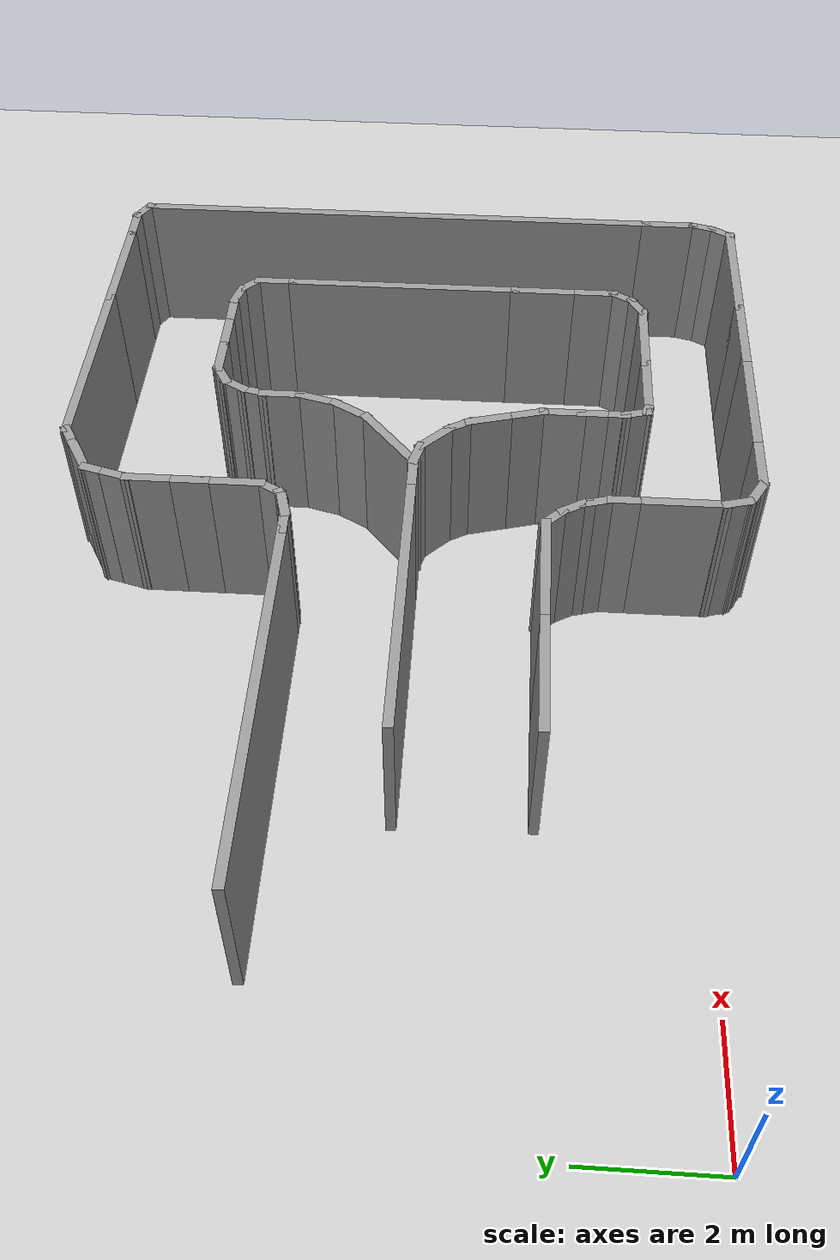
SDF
<sdf version="1.7">
 <world name="default">
  <model name="ground_plane">
   <static>1</static>
   <link name="link">
    <collision name="collision">
     <geometry><plane><normal>0 0 1</normal><size>100 100</size></plane></geometry>
     <surface><friction><ode><mu>100</mu><mu2>50</mu2></ode></friction></surface>
    </collision>
    <visual name="visual">
     <cast_shadows>0</cast_shadows>
     <geometry><plane><normal>0 0 1</normal><size>100 100</size></plane></geometry>
     <material>
      <script><uri>file://media/materials/scripts/gazebo.material</uri><name>Gazebo/Grey</name></script>
     </material>
    </visual>
   </link>
  </model>
  <model name="f1track">
   <pose>5.08169 4.60553 0 0 -0 0</pose>
   <link name="Wall_100">
    <collision name="Wall_100_Collision">
     <geometry><box><size>0.75 0.15 2.5</size></box></geometry>
     <pose>0 0 1.25 0 -0 0</pose>
    </collision>
    <visual name="Wall_100_Visual">
     <pose>0 0 1.25 0 -0 0</pose>
     <geometry><box><size>0.75 0.15 2.5</size></box></geometry>
     <material>
      <script><uri>file://media/materials/scripts/gazebo.material</uri><name>Gazebo/Grey</name></script>
      <ambient>1 1 1 1</ambient>
     </material>
     <meta><layer>0</layer></meta>
    </visual>
    <pose>5.52536 -1.1961 0 0 -0 -1.309</pose>
   </link>
   <link name="Wall_101">
    <collision name="Wall_101_Collision">
     <geometry><box><size>0.75 0.15 2.5</size></box></geometry>
     <pose>0 0 1.25 0 -0 0</pose>
    </collision>
    <visual name="Wall_101_Visual">
     <pose>0 0 1.25 0 -0 0</pose>
     <geometry><box><size>0.75 0.15 2.5</size></box></geometry>
     <material>
      <script><uri>file://media/materials/scripts/gazebo.material</uri><name>Gazebo/Grey</name></script>
      <ambient>1 1 1 1</ambient>
     </material>
     <meta><layer>0</layer></meta>
    </visual>
    <pose>5.68066 -1.77566 0 0 -0 -1.309</pose>
   </link>
   <link name="Wall_102">
    <collision name="Wall_102_Collision">
     <geometry><box><size>0.75 0.15 2.5</size></box></geometry>
     <pose>0 0 1.25 0 -0 0</pose>
    </collision>
    <visual name="Wall_102_Visual">
     <pose>0 0 1.25 0 -0 0</pose>
     <geometry><box><size>0.75 0.15 2.5</size></box></geometry>
     <material>
      <script><uri>file://media/materials/scripts/gazebo.material</uri><name>Gazebo/Grey</name></script>
      <ambient>1 1 1 1</ambient>
     </material>
     <meta><layer>0</layer></meta>
    </visual>
    <pose>5.7583 -2.36544 0 0 -0 -1.5708</pose>
   </link>
   <link name="Wall_103">
    <collision name="Wall_103_Collision">
     <geometry><box><size>0.5 0.15 2.5</size></box></geometry>
     <pose>0 0 1.25 0 -0 0</pose>
    </collision>
    <visual name="Wall_103_Visual">
     <pose>0 0 1.25 0 -0 0</pose>
     <geometry><box><size>0.5 0.15 2.5</size></box></geometry>
     <material>
      <script><uri>file://media/materials/scripts/gazebo.material</uri><name>Gazebo/Grey</name></script>
      <ambient>1 1 1 1</ambient>
     </material>
     <meta><layer>0</layer></meta>
    </visual>
    <pose>5.7583 -2.84044 0 0 -0 -1.5708</pose>
   </link>
   <link name="Wall_104">
    <collision name="Wall_104_Collision">
     <geometry><box><size>0.5 0.15 2.5</size></box></geometry>
     <pose>0 0 1.25 0 -0 0</pose>
    </collision>
    <visual name="Wall_104_Visual">
     <pose>0 0 1.25 0 -0 0</pose>
     <geometry><box><size>0.5 0.15 2.5</size></box></geometry>
     <material>
      <script><uri>file://media/materials/scripts/gazebo.material</uri><name>Gazebo/Grey</name></script>
      <ambient>1 1 1 1</ambient>
     </material>
     <meta><layer>0</layer></meta>
    </visual>
    <pose>5.7583 -3.19044 0 0 -0 -1.5708</pose>
   </link>
   <link name="Wall_105">
    <collision name="Wall_105_Collision">
     <geometry><box><size>0.5 0.15 2.5</size></box></geometry>
     <pose>0 0 1.25 0 -0 0</pose>
    </collision>
    <visual name="Wall_105_Visual">
     <pose>0 0 1.25 0 -0 0</pose>
     <geometry><box><size>0.5 0.15 2.5</size></box></geometry>
     <material>
      <script><uri>file://media/materials/scripts/gazebo.material</uri><name>Gazebo/Grey</name></script>
      <ambient>1 1 1 1</ambient>
     </material>
     <meta><layer>0</layer></meta>
    </visual>
    <pose>5.8036 -3.53448 0 0 -0 -1.309</pose>
   </link>
   <link name="Wall_106">
    <collision name="Wall_106_Collision">
     <geometry><box><size>0.25 0.15 2.5</size></box></geometry>
     <pose>0 0 1.25 0 -0 0</pose>
    </collision>
    <visual name="Wall_106_Visual">
     <pose>0 0 1.25 0 -0 0</pose>
     <geometry><box><size>0.25 0.15 2.5</size></box></geometry>
     <material>
      <script><uri>file://media/materials/scripts/gazebo.material</uri><name>Gazebo/Grey</name></script>
      <ambient>1 1 1 1</ambient>
     </material>
     <meta><layer>0</layer></meta>
    </visual>
    <pose>5.89718 -3.71645 0 0 -0 -0.261799</pose>
   </link>
   <link name="Wall_107">
    <collision name="Wall_107_Collision">
     <geometry><box><size>1.25 0.15 2.5</size></box></geometry>
     <pose>0 0 1.25 0 -0 0</pose>
    </collision>
    <visual name="Wall_107_Visual">
     <pose>0 0 1.25 0 -0 0</pose>
     <geometry><box><size>1.25 0.15 2.5</size></box></geometry>
     <material>
      <script><uri>file://media/materials/scripts/gazebo.material</uri><name>Gazebo/Grey</name></script>
      <ambient>1 1 1 1</ambient>
     </material>
     <meta><layer>0</layer></meta>
    </visual>
    <pose>6.49548 -3.72939 0 0 -0 0</pose>
   </link>
   <link name="Wall_108">
    <collision name="Wall_108_Collision">
     <geometry><box><size>1.5 0.15 2.5</size></box></geometry>
     <pose>0 0 1.25 0 -0 0</pose>
    </collision>
    <visual name="Wall_108_Visual">
     <pose>0 0 1.25 0 -0 0</pose>
     <geometry><box><size>1.5 0.15 2.5</size></box></geometry>
     <material>
      <script><uri>file://media/materials/scripts/gazebo.material</uri><name>Gazebo/Grey</name></script>
      <ambient>1 1 1 1</ambient>
     </material>
     <meta><layer>0</layer></meta>
    </visual>
    <pose>7.72048 -3.72939 0 0 -0 0</pose>
   </link>
   <link name="Wall_109">
    <collision name="Wall_109_Collision">
     <geometry><box><size>0.5 0.15 2.5</size></box></geometry>
     <pose>0 0 1.25 0 -0 0</pose>
    </collision>
    <visual name="Wall_109_Visual">
     <pose>0 0 1.25 0 -0 0</pose>
     <geometry><box><size>0.5 0.15 2.5</size></box></geometry>
     <material>
      <script><uri>file://media/materials/scripts/gazebo.material</uri><name>Gazebo/Grey</name></script>
      <ambient>1 1 1 1</ambient>
     </material>
     <meta><layer>0</layer></meta>
    </visual>
    <pose>8.54703 -3.64189 0 0 -0 0.523599</pose>
   </link>
   <link name="Wall_110">
    <collision name="Wall_110_Collision">
     <geometry><box><size>0.5 0.15 2.5</size></box></geometry>
     <pose>0 0 1.25 0 -0 0</pose>
    </collision>
    <visual name="Wall_110_Visual">
     <pose>0 0 1.25 0 -0 0</pose>
     <geometry><box><size>0.5 0.15 2.5</size></box></geometry>
     <material>
      <script><uri>file://media/materials/scripts/gazebo.material</uri><name>Gazebo/Grey</name></script>
      <ambient>1 1 1 1</ambient>
     </material>
     <meta><layer>0</layer></meta>
    </visual>
    <pose>8.78609 -3.40284 0 0 -0 1.0472</pose>
   </link>
   <link name="Wall_111">
    <collision name="Wall_111_Collision">
     <geometry><box><size>0.75 0.15 2.5</size></box></geometry>
     <pose>0 0 1.25 0 -0 0</pose>
    </collision>
    <visual name="Wall_111_Visual">
     <pose>0 0 1.25 0 -0 0</pose>
     <geometry><box><size>0.75 0.15 2.5</size></box></geometry>
     <material>
      <script><uri>file://media/materials/scripts/gazebo.material</uri><name>Gazebo/Grey</name></script>
      <ambient>1 1 1 1</ambient>
     </material>
     <meta><layer>0</layer></meta>
    </visual>
    <pose>8.87359 -2.95128 0 0 -0 1.5708</pose>
   </link>
   <link name="Wall_112">
    <collision name="Wall_112_Collision">
     <geometry><box><size>1.25 0.15 2.5</size></box></geometry>
     <pose>0 0 1.25 0 -0 0</pose>
    </collision>
    <visual name="Wall_112_Visual">
     <pose>0 0 1.25 0 -0 0</pose>
     <geometry><box><size>1.25 0.15 2.5</size></box></geometry>
     <material>
      <script><uri>file://media/materials/scripts/gazebo.material</uri><name>Gazebo/Grey</name></script>
      <ambient>1 1 1 1</ambient>
     </material>
     <meta><layer>0</layer></meta>
    </visual>
    <pose>8.87359 -2.10128 0 0 -0 1.5708</pose>
   </link>
   <link name="Wall_113">
    <collision name="Wall_113_Collision">
     <geometry><box><size>4 0.15 2.5</size></box></geometry>
     <pose>0 0 1.25 0 -0 0</pose>
    </collision>
    <visual name="Wall_113_Visual">
     <pose>0 0 1.25 0 -0 0</pose>
     <geometry><box><size>4 0.15 2.5</size></box></geometry>
     <material>
      <script><uri>file://media/materials/scripts/gazebo.material</uri><name>Gazebo/Grey</name></script>
      <ambient>1 1 1 1</ambient>
     </material>
     <meta><layer>0</layer></meta>
    </visual>
    <pose>8.87359 0.373715 0 0 -0 1.5708</pose>
   </link>
   <link name="Wall_114">
    <collision name="Wall_114_Collision">
     <geometry><box><size>0.75 0.15 2.5</size></box></geometry>
     <pose>0 0 1.25 0 -0 0</pose>
    </collision>
    <visual name="Wall_114_Visual">
     <pose>0 0 1.25 0 -0 0</pose>
     <geometry><box><size>0.75 0.15 2.5</size></box></geometry>
     <material>
      <script><uri>file://media/materials/scripts/gazebo.material</uri><name>Gazebo/Grey</name></script>
      <ambient>1 1 1 1</ambient>
     </material>
     <meta><layer>0</layer></meta>
    </visual>
    <pose>8.87359 2.59871 0 0 -0 1.5708</pose>
   </link>
   <link name="Wall_115">
    <collision name="Wall_115_Collision">
     <geometry><box><size>0.5 0.15 2.5</size></box></geometry>
     <pose>0 0 1.25 0 -0 0</pose>
    </collision>
    <visual name="Wall_115_Visual">
     <pose>0 0 1.25 0 -0 0</pose>
     <geometry><box><size>0.5 0.15 2.5</size></box></geometry>
     <material>
      <script><uri>file://media/materials/scripts/gazebo.material</uri><name>Gazebo/Grey</name></script>
      <ambient>1 1 1 1</ambient>
     </material>
     <meta><layer>0</layer></meta>
    </visual>
    <pose>8.74985 3.02246 0 0 -0 2.35619</pose>
   </link>
   <link name="Wall_116">
    <collision name="Wall_116_Collision">
     <geometry><box><size>0.5 0.15 2.5</size></box></geometry>
     <pose>0 0 1.25 0 -0 0</pose>
    </collision>
    <visual name="Wall_116_Visual">
     <pose>0 0 1.25 0 -0 0</pose>
     <geometry><box><size>0.5 0.15 2.5</size></box></geometry>
     <material>
      <script><uri>file://media/materials/scripts/gazebo.material</uri><name>Gazebo/Grey</name></script>
      <ambient>1 1 1 1</ambient>
     </material>
     <meta><layer>0</layer></meta>
    </visual>
    <pose>8.45707 3.1915 0 0 -0 2.87979</pose>
   </link>
   <link name="Wall_117">
    <collision name="Wall_117_Collision">
     <geometry><box><size>0.75 0.15 2.5</size></box></geometry>
     <pose>0 0 1.25 0 -0 0</pose>
    </collision>
    <visual name="Wall_117_Visual">
     <pose>0 0 1.25 0 -0 0</pose>
     <geometry><box><size>0.75 0.15 2.5</size></box></geometry>
     <material>
      <script><uri>file://media/materials/scripts/gazebo.material</uri><name>Gazebo/Grey</name></script>
      <ambient>1 1 1 1</ambient>
     </material>
     <meta><layer>0</layer></meta>
    </visual>
    <pose>7.98803 3.23679 0 0 -0 3.14159</pose>
   </link>
   <link name="Wall_118">
    <collision name="Wall_118_Collision">
     <geometry><box><size>0.75 0.15 2.5</size></box></geometry>
     <pose>0 0 1.25 0 -0 0</pose>
    </collision>
    <visual name="Wall_118_Visual">
     <pose>0 0 1.25 0 -0 0</pose>
     <geometry><box><size>0.75 0.15 2.5</size></box></geometry>
     <material>
      <script><uri>file://media/materials/scripts/gazebo.material</uri><name>Gazebo/Grey</name></script>
      <ambient>1 1 1 1</ambient>
     </material>
     <meta><layer>0</layer></meta>
    </visual>
    <pose>7.38803 3.23679 0 0 -0 3.14159</pose>
   </link>
   <link name="Wall_121">
    <collision name="Wall_121_Collision">
     <geometry><box><size>0.75 0.15 2.5</size></box></geometry>
     <pose>0 0 1.25 0 -0 0</pose>
    </collision>
    <visual name="Wall_121_Visual">
     <pose>0 0 1.25 0 -0 0</pose>
     <geometry><box><size>0.75 0.15 2.5</size></box></geometry>
     <material>
      <script><uri>file://media/materials/scripts/gazebo.material</uri><name>Gazebo/Grey</name></script>
      <ambient>1 1 1 1</ambient>
     </material>
     <meta><layer>0</layer></meta>
    </visual>
    <pose>6.78803 3.23679 0 0 -0 3.14159</pose>
   </link>
   <link name="Wall_122">
    <collision name="Wall_122_Collision">
     <geometry><box><size>0.5 0.15 2.5</size></box></geometry>
     <pose>0 0 1.25 0 -0 0</pose>
    </collision>
    <visual name="Wall_122_Visual">
     <pose>0 0 1.25 0 -0 0</pose>
     <geometry><box><size>0.5 0.15 2.5</size></box></geometry>
     <material>
      <script><uri>file://media/materials/scripts/gazebo.material</uri><name>Gazebo/Grey</name></script>
      <ambient>1 1 1 1</ambient>
     </material>
     <meta><layer>0</layer></meta>
    </visual>
    <pose>6.33647 3.14929 0 0 -0 -2.61799</pose>
   </link>
   <link name="Wall_123">
    <collision name="Wall_123_Collision">
     <geometry><box><size>0.5 0.15 2.5</size></box></geometry>
     <pose>0 0 1.25 0 -0 0</pose>
    </collision>
    <visual name="Wall_123_Visual">
     <pose>0 0 1.25 0 -0 0</pose>
     <geometry><box><size>0.5 0.15 2.5</size></box></geometry>
     <material>
      <script><uri>file://media/materials/scripts/gazebo.material</uri><name>Gazebo/Grey</name></script>
      <ambient>1 1 1 1</ambient>
     </material>
     <meta><layer>0</layer></meta>
    </visual>
    <pose>6.09742 2.91024 0 0 -0 -2.0944</pose>
   </link>
   <link name="Wall_124">
    <collision name="Wall_124_Collision">
     <geometry><box><size>0.5 0.15 2.5</size></box></geometry>
     <pose>0 0 1.25 0 -0 0</pose>
    </collision>
    <visual name="Wall_124_Visual">
     <pose>0 0 1.25 0 -0 0</pose>
     <geometry><box><size>0.5 0.15 2.5</size></box></geometry>
     <material>
      <script><uri>file://media/materials/scripts/gazebo.material</uri><name>Gazebo/Grey</name></script>
      <ambient>1 1 1 1</ambient>
     </material>
     <meta><layer>0</layer></meta>
    </visual>
    <pose>5.96463 2.58964 0 0 -0 -1.8326</pose>
   </link>
   <link name="Wall_125">
    <collision name="Wall_125_Collision">
     <geometry><box><size>0.75 0.15 2.5</size></box></geometry>
     <pose>0 0 1.25 0 -0 0</pose>
    </collision>
    <visual name="Wall_125_Visual">
     <pose>0 0 1.25 0 -0 0</pose>
     <geometry><box><size>0.75 0.15 2.5</size></box></geometry>
     <material>
      <script><uri>file://media/materials/scripts/gazebo.material</uri><name>Gazebo/Grey</name></script>
      <ambient>1 1 1 1</ambient>
     </material>
     <meta><layer>0</layer></meta>
    </visual>
    <pose>5.91933 2.12061 0 0 -0 -1.5708</pose>
   </link>
   <link name="Wall_126">
    <collision name="Wall_126_Collision">
     <geometry><box><size>0.75 0.15 2.5</size></box></geometry>
     <pose>0 0 1.25 0 -0 0</pose>
    </collision>
    <visual name="Wall_126_Visual">
     <pose>0 0 1.25 0 -0 0</pose>
     <geometry><box><size>0.75 0.15 2.5</size></box></geometry>
     <material>
      <script><uri>file://media/materials/scripts/gazebo.material</uri><name>Gazebo/Grey</name></script>
      <ambient>1 1 1 1</ambient>
     </material>
     <meta><layer>0</layer></meta>
    </visual>
    <pose>5.84169 1.53083 0 0 -0 -1.8326</pose>
   </link>
   <link name="Wall_127">
    <collision name="Wall_127_Collision">
     <geometry><box><size>0.75 0.15 2.5</size></box></geometry>
     <pose>0 0 1.25 0 -0 0</pose>
    </collision>
    <visual name="Wall_127_Visual">
     <pose>0 0 1.25 0 -0 0</pose>
     <geometry><box><size>0.75 0.15 2.5</size></box></geometry>
     <material>
      <script><uri>file://media/materials/scripts/gazebo.material</uri><name>Gazebo/Grey</name></script>
      <ambient>1 1 1 1</ambient>
     </material>
     <meta><layer>0</layer></meta>
    </visual>
    <pose>5.61404 0.981243 0 0 -0 -2.0944</pose>
   </link>
   <link name="Wall_128">
    <collision name="Wall_128_Collision">
     <geometry><box><size>1.4011 0.15 2.5</size></box></geometry>
     <pose>0 0 1.25 0 -0 0</pose>
    </collision>
    <visual name="Wall_128_Visual">
     <pose>0 0 1.25 0 -0 0</pose>
     <geometry><box><size>1.4011 0.15 2.5</size></box></geometry>
     <material>
      <script><uri>file://media/materials/scripts/gazebo.material</uri><name>Gazebo/Grey</name></script>
      <ambient>1 1 1 1</ambient>
     </material>
     <meta><layer>0</layer></meta>
    </visual>
    <pose>4.98721 0.316534 0 0 -0 -2.43759</pose>
   </link>
   <link name="Wall_21">
    <collision name="Wall_21_Collision">
     <geometry><box><size>2 0.15 2.5</size></box></geometry>
     <pose>0 0 1.25 0 -0 0</pose>
    </collision>
    <visual name="Wall_21_Visual">
     <pose>0 0 1.25 0 -0 0</pose>
     <geometry><box><size>2 0.15 2.5</size></box></geometry>
     <material>
      <script><uri>file://media/materials/scripts/gazebo.material</uri><name>Gazebo/Grey</name></script>
      <ambient>1 1 1 1</ambient>
     </material>
     <meta><layer>0</layer></meta>
    </visual>
    <pose>0.545677 -2.11404 0 0 -0 0</pose>
   </link>
   <link name="Wall_22">
    <collision name="Wall_22_Collision">
     <geometry><box><size>2 0.15 2.5</size></box></geometry>
     <pose>0 0 1.25 0 -0 0</pose>
    </collision>
    <visual name="Wall_22_Visual">
     <pose>0 0 1.25 0 -0 0</pose>
     <geometry><box><size>2 0.15 2.5</size></box></geometry>
     <material>
      <script><uri>file://media/materials/scripts/gazebo.material</uri><name>Gazebo/Grey</name></script>
      <ambient>1 1 1 1</ambient>
     </material>
     <meta><layer>0</layer></meta>
    </visual>
    <pose>2.39568 -2.11404 0 0 -0 0</pose>
   </link>
   <link name="Wall_23">
    <collision name="Wall_23_Collision">
     <geometry><box><size>0.5 0.15 2.5</size></box></geometry>
     <pose>0 0 1.25 0 -0 0</pose>
    </collision>
    <visual name="Wall_23_Visual">
     <pose>0 0 1.25 0 -0 0</pose>
     <geometry><box><size>0.5 0.15 2.5</size></box></geometry>
     <material>
      <script><uri>file://media/materials/scripts/gazebo.material</uri><name>Gazebo/Grey</name></script>
      <ambient>1 1 1 1</ambient>
     </material>
     <meta><layer>0</layer></meta>
    </visual>
    <pose>3.44442 -2.23779 0 0 -0 -0.785398</pose>
   </link>
   <link name="Wall_24">
    <collision name="Wall_24_Collision">
     <geometry><box><size>0.5 0.15 2.5</size></box></geometry>
     <pose>0 0 1.25 0 -0 0</pose>
    </collision>
    <visual name="Wall_24_Visual">
     <pose>0 0 1.25 0 -0 0</pose>
     <geometry><box><size>0.5 0.15 2.5</size></box></geometry>
     <material>
      <script><uri>file://media/materials/scripts/gazebo.material</uri><name>Gazebo/Grey</name></script>
      <ambient>1 1 1 1</ambient>
     </material>
     <meta><layer>0</layer></meta>
    </visual>
    <pose>3.65566 -2.51309 0 0 -0 -1.0472</pose>
   </link>
   <link name="Wall_25">
    <collision name="Wall_25_Collision">
     <geometry><box><size>0.25 0.15 2.5</size></box></geometry>
     <pose>0 0 1.25 0 -0 0</pose>
    </collision>
    <visual name="Wall_25_Visual">
     <pose>0 0 1.25 0 -0 0</pose>
     <geometry><box><size>0.25 0.15 2.5</size></box></geometry>
     <material>
      <script><uri>file://media/materials/scripts/gazebo.material</uri><name>Gazebo/Grey</name></script>
      <ambient>1 1 1 1</ambient>
     </material>
     <meta><layer>0</layer></meta>
    </visual>
    <pose>3.7561 -2.71294 0 0 -0 -1.309</pose>
   </link>
   <link name="Wall_26">
    <collision name="Wall_26_Collision">
     <geometry><box><size>0.5 0.15 2.5</size></box></geometry>
     <pose>0 0 1.25 0 -0 0</pose>
    </collision>
    <visual name="Wall_26_Visual">
     <pose>0 0 1.25 0 -0 0</pose>
     <geometry><box><size>0.5 0.15 2.5</size></box></geometry>
     <material>
      <script><uri>file://media/materials/scripts/gazebo.material</uri><name>Gazebo/Grey</name></script>
      <ambient>1 1 1 1</ambient>
     </material>
     <meta><layer>0</layer></meta>
    </visual>
    <pose>3.81434 -2.93027 0 0 -0 -1.309</pose>
   </link>
   <link name="Wall_27">
    <collision name="Wall_27_Collision">
     <geometry><box><size>0.5 0.15 2.5</size></box></geometry>
     <pose>0 0 1.25 0 -0 0</pose>
    </collision>
    <visual name="Wall_27_Visual">
     <pose>0 0 1.25 0 -0 0</pose>
     <geometry><box><size>0.5 0.15 2.5</size></box></geometry>
     <material>
      <script><uri>file://media/materials/scripts/gazebo.material</uri><name>Gazebo/Grey</name></script>
      <ambient>1 1 1 1</ambient>
     </material>
     <meta><layer>0</layer></meta>
    </visual>
    <pose>3.85963 -3.27431 0 0 -0 -1.5708</pose>
   </link>
   <link name="Wall_28">
    <collision name="Wall_28_Collision">
     <geometry><box><size>1.5 0.15 2.5</size></box></geometry>
     <pose>0 0 1.25 0 -0 0</pose>
    </collision>
    <visual name="Wall_28_Visual">
     <pose>0 0 1.25 0 -0 0</pose>
     <geometry><box><size>1.5 0.15 2.5</size></box></geometry>
     <material>
      <script><uri>file://media/materials/scripts/gazebo.material</uri><name>Gazebo/Grey</name></script>
      <ambient>1 1 1 1</ambient>
     </material>
     <meta><layer>0</layer></meta>
    </visual>
    <pose>3.85963 -4.12431 0 0 -0 -1.5708</pose>
   </link>
   <link name="Wall_29">
    <collision name="Wall_29_Collision">
     <geometry><box><size>0.5 0.15 2.5</size></box></geometry>
     <pose>0 0 1.25 0 -0 0</pose>
    </collision>
    <visual name="Wall_29_Visual">
     <pose>0 0 1.25 0 -0 0</pose>
     <geometry><box><size>0.5 0.15 2.5</size></box></geometry>
     <material>
      <script><uri>file://media/materials/scripts/gazebo.material</uri><name>Gazebo/Grey</name></script>
      <ambient>1 1 1 1</ambient>
     </material>
     <meta><layer>0</layer></meta>
    </visual>
    <pose>3.90493 -4.96834 0 0 -0 -1.309</pose>
   </link>
   <link name="Wall_30">
    <collision name="Wall_30_Collision">
     <geometry><box><size>0.25 0.15 2.5</size></box></geometry>
     <pose>0 0 1.25 0 -0 0</pose>
    </collision>
    <visual name="Wall_30_Visual">
     <pose>0 0 1.25 0 -0 0</pose>
     <geometry><box><size>0.25 0.15 2.5</size></box></geometry>
     <material>
      <script><uri>file://media/materials/scripts/gazebo.material</uri><name>Gazebo/Grey</name></script>
      <ambient>1 1 1 1</ambient>
     </material>
     <meta><layer>0</layer></meta>
    </visual>
    <pose>3.98557 -5.17274 0 0 -0 -0.785398</pose>
   </link>
   <link name="Wall_31">
    <collision name="Wall_31_Collision">
     <geometry><box><size>0.5 0.15 2.5</size></box></geometry>
     <pose>0 0 1.25 0 -0 0</pose>
    </collision>
    <visual name="Wall_31_Visual">
     <pose>0 0 1.25 0 -0 0</pose>
     <geometry><box><size>0.5 0.15 2.5</size></box></geometry>
     <material>
      <script><uri>file://media/materials/scripts/gazebo.material</uri><name>Gazebo/Grey</name></script>
      <ambient>1 1 1 1</ambient>
     </material>
     <meta><layer>0</layer></meta>
    </visual>
    <pose>4.17248 -5.29559 0 0 -0 -0.523599</pose>
   </link>
   <link name="Wall_32">
    <collision name="Wall_32_Collision">
     <geometry><box><size>1 0.15 2.5</size></box></geometry>
     <pose>0 0 1.25 0 -0 0</pose>
    </collision>
    <visual name="Wall_32_Visual">
     <pose>0 0 1.25 0 -0 0</pose>
     <geometry><box><size>1 0.15 2.5</size></box></geometry>
     <material>
      <script><uri>file://media/materials/scripts/gazebo.material</uri><name>Gazebo/Grey</name></script>
      <ambient>1 1 1 1</ambient>
     </material>
     <meta><layer>0</layer></meta>
    </visual>
    <pose>4.74904 -5.38309 0 0 -0 0</pose>
   </link>
   <link name="Wall_33">
    <collision name="Wall_33_Collision">
     <geometry><box><size>2.25 0.15 2.5</size></box></geometry>
     <pose>0 0 1.25 0 -0 0</pose>
    </collision>
    <visual name="Wall_33_Visual">
     <pose>0 0 1.25 0 -0 0</pose>
     <geometry><box><size>2.25 0.15 2.5</size></box></geometry>
     <material>
      <script><uri>file://media/materials/scripts/gazebo.material</uri><name>Gazebo/Grey</name></script>
      <ambient>1 1 1 1</ambient>
     </material>
     <meta><layer>0</layer></meta>
    </visual>
    <pose>6.22404 -5.38309 0 0 -0 0</pose>
   </link>
   <link name="Wall_34">
    <collision name="Wall_34_Collision">
     <geometry><box><size>1.5 0.15 2.5</size></box></geometry>
     <pose>0 0 1.25 0 -0 0</pose>
    </collision>
    <visual name="Wall_34_Visual">
     <pose>0 0 1.25 0 -0 0</pose>
     <geometry><box><size>1.5 0.15 2.5</size></box></geometry>
     <material>
      <script><uri>file://media/materials/scripts/gazebo.material</uri><name>Gazebo/Grey</name></script>
      <ambient>1 1 1 1</ambient>
     </material>
     <meta><layer>0</layer></meta>
    </visual>
    <pose>7.94904 -5.38309 0 0 -0 0</pose>
   </link>
   <link name="Wall_35">
    <collision name="Wall_35_Collision">
     <geometry><box><size>2.25 0.15 2.5</size></box></geometry>
     <pose>0 0 1.25 0 -0 0</pose>
    </collision>
    <visual name="Wall_35_Visual">
     <pose>0 0 1.25 0 -0 0</pose>
     <geometry><box><size>2.25 0.15 2.5</size></box></geometry>
     <material>
      <script><uri>file://media/materials/scripts/gazebo.material</uri><name>Gazebo/Grey</name></script>
      <ambient>1 1 1 1</ambient>
     </material>
     <meta><layer>0</layer></meta>
    </visual>
    <pose>9.67404 -5.38309 0 0 -0 0</pose>
   </link>
   <link name="Wall_36">
    <collision name="Wall_36_Collision">
     <geometry><box><size>0.5 0.15 2.5</size></box></geometry>
     <pose>0 0 1.25 0 -0 0</pose>
    </collision>
    <visual name="Wall_36_Visual">
     <pose>0 0 1.25 0 -0 0</pose>
     <geometry><box><size>0.5 0.15 2.5</size></box></geometry>
     <material>
      <script><uri>file://media/materials/scripts/gazebo.material</uri><name>Gazebo/Grey</name></script>
      <ambient>1 1 1 1</ambient>
     </material>
     <meta><layer>0</layer></meta>
    </visual>
    <pose>10.8115 -5.23154 0 0 -0 1.0472</pose>
   </link>
   <link name="Wall_37">
    <collision name="Wall_37_Collision">
     <geometry><box><size>0.5 0.15 2.5</size></box></geometry>
     <pose>0 0 1.25 0 -0 0</pose>
    </collision>
    <visual name="Wall_37_Visual">
     <pose>0 0 1.25 0 -0 0</pose>
     <geometry><box><size>0.5 0.15 2.5</size></box></geometry>
     <material>
      <script><uri>file://media/materials/scripts/gazebo.material</uri><name>Gazebo/Grey</name></script>
      <ambient>1 1 1 1</ambient>
     </material>
     <meta><layer>0</layer></meta>
    </visual>
    <pose>10.9443 -4.91095 0 0 -0 1.309</pose>
   </link>
   <link name="Wall_38">
    <collision name="Wall_38_Collision">
     <geometry><box><size>1 0.15 2.5</size></box></geometry>
     <pose>0 0 1.25 0 -0 0</pose>
    </collision>
    <visual name="Wall_38_Visual">
     <pose>0 0 1.25 0 -0 0</pose>
     <geometry><box><size>1 0.15 2.5</size></box></geometry>
     <material>
      <script><uri>file://media/materials/scripts/gazebo.material</uri><name>Gazebo/Grey</name></script>
      <ambient>1 1 1 1</ambient>
     </material>
     <meta><layer>0</layer></meta>
    </visual>
    <pose>10.9896 -4.31691 0 0 -0 1.5708</pose>
   </link>
   <link name="Wall_39">
    <collision name="Wall_39_Collision">
     <geometry><box><size>9.25 0.15 2.5</size></box></geometry>
     <pose>0 0 1.25 0 -0 0</pose>
    </collision>
    <visual name="Wall_39_Visual">
     <pose>0 0 1.25 0 -0 0</pose>
     <geometry><box><size>9.25 0.15 2.5</size></box></geometry>
     <material>
      <script><uri>file://media/materials/scripts/gazebo.material</uri><name>Gazebo/Grey</name></script>
      <ambient>1 1 1 1</ambient>
     </material>
     <meta><layer>0</layer></meta>
    </visual>
    <pose>10.9896 0.658091 0 0 -0 1.5708</pose>
   </link>
   <link name="Wall_43">
    <collision name="Wall_43_Collision">
     <geometry><box><size>0.5 0.15 2.5</size></box></geometry>
     <pose>0 0 1.25 0 -0 0</pose>
    </collision>
    <visual name="Wall_43_Visual">
     <pose>0 0 1.25 0 -0 0</pose>
     <geometry><box><size>0.5 0.15 2.5</size></box></geometry>
     <material>
      <script><uri>file://media/materials/scripts/gazebo.material</uri><name>Gazebo/Grey</name></script>
      <ambient>1 1 1 1</ambient>
     </material>
     <meta><layer>0</layer></meta>
    </visual>
    <pose>10.8381 5.29559 0 0 -0 2.61799</pose>
   </link>
   <link name="Wall_44">
    <collision name="Wall_44_Collision">
     <geometry><box><size>0.75 0.15 2.5</size></box></geometry>
     <pose>0 0 1.25 0 -0 0</pose>
    </collision>
    <visual name="Wall_44_Visual">
     <pose>0 0 1.25 0 -0 0</pose>
     <geometry><box><size>0.75 0.15 2.5</size></box></geometry>
     <material>
      <script><uri>file://media/materials/scripts/gazebo.material</uri><name>Gazebo/Grey</name></script>
      <ambient>1 1 1 1</ambient>
     </material>
     <meta><layer>0</layer></meta>
    </visual>
    <pose>10.3865 5.38309 0 0 -0 3.14159</pose>
   </link>
   <link name="Wall_45">
    <collision name="Wall_45_Collision">
     <geometry><box><size>2 0.15 2.5</size></box></geometry>
     <pose>0 0 1.25 0 -0 0</pose>
    </collision>
    <visual name="Wall_45_Visual">
     <pose>0 0 1.25 0 -0 0</pose>
     <geometry><box><size>2 0.15 2.5</size></box></geometry>
     <material>
      <script><uri>file://media/materials/scripts/gazebo.material</uri><name>Gazebo/Grey</name></script>
      <ambient>1 1 1 1</ambient>
     </material>
     <meta><layer>0</layer></meta>
    </visual>
    <pose>9.16152 5.38309 0 0 -0 3.14159</pose>
   </link>
   <link name="Wall_46">
    <collision name="Wall_46_Collision">
     <geometry><box><size>3.5 0.15 2.5</size></box></geometry>
     <pose>0 0 1.25 0 -0 0</pose>
    </collision>
    <visual name="Wall_46_Visual">
     <pose>0 0 1.25 0 -0 0</pose>
     <geometry><box><size>3.5 0.15 2.5</size></box></geometry>
     <material>
      <script><uri>file://media/materials/scripts/gazebo.material</uri><name>Gazebo/Grey</name></script>
      <ambient>1 1 1 1</ambient>
     </material>
     <meta><layer>0</layer></meta>
    </visual>
    <pose>6.56152 5.38309 0 0 -0 3.14159</pose>
   </link>
   <link name="Wall_47">
    <collision name="Wall_47_Collision">
     <geometry><box><size>0.5 0.15 2.5</size></box></geometry>
     <pose>0 0 1.25 0 -0 0</pose>
    </collision>
    <visual name="Wall_47_Visual">
     <pose>0 0 1.25 0 -0 0</pose>
     <geometry><box><size>0.5 0.15 2.5</size></box></geometry>
     <material>
      <script><uri>file://media/materials/scripts/gazebo.material</uri><name>Gazebo/Grey</name></script>
      <ambient>1 1 1 1</ambient>
     </material>
     <meta><layer>0</layer></meta>
    </visual>
    <pose>4.73496 5.29559 0 0 -0 -2.61799</pose>
   </link>
   <link name="Wall_48">
    <collision name="Wall_48_Collision">
     <geometry><box><size>0.75 0.15 2.5</size></box></geometry>
     <pose>0 0 1.25 0 -0 0</pose>
    </collision>
    <visual name="Wall_48_Visual">
     <pose>0 0 1.25 0 -0 0</pose>
     <geometry><box><size>0.75 0.15 2.5</size></box></geometry>
     <material>
      <script><uri>file://media/materials/scripts/gazebo.material</uri><name>Gazebo/Grey</name></script>
      <ambient>1 1 1 1</ambient>
     </material>
     <meta><layer>0</layer></meta>
    </visual>
    <pose>4.3236 5.05809 0 0 -0 -2.61799</pose>
   </link>
   <link name="Wall_49">
    <collision name="Wall_49_Collision">
     <geometry><box><size>0.5 0.15 2.5</size></box></geometry>
     <pose>0 0 1.25 0 -0 0</pose>
    </collision>
    <visual name="Wall_49_Visual">
     <pose>0 0 1.25 0 -0 0</pose>
     <geometry><box><size>0.5 0.15 2.5</size></box></geometry>
     <material>
      <script><uri>file://media/materials/scripts/gazebo.material</uri><name>Gazebo/Grey</name></script>
      <ambient>1 1 1 1</ambient>
     </material>
     <meta><layer>0</layer></meta>
    </visual>
    <pose>4.0185 4.73905 0 0 -0 -1.8326</pose>
   </link>
   <link name="Wall_50">
    <collision name="Wall_50_Collision">
     <geometry><box><size>0.5 0.15 2.5</size></box></geometry>
     <pose>0 0 1.25 0 -0 0</pose>
    </collision>
    <visual name="Wall_50_Visual">
     <pose>0 0 1.25 0 -0 0</pose>
     <geometry><box><size>0.5 0.15 2.5</size></box></geometry>
     <material>
      <script><uri>file://media/materials/scripts/gazebo.material</uri><name>Gazebo/Grey</name></script>
      <ambient>1 1 1 1</ambient>
     </material>
     <meta><layer>0</layer></meta>
    </visual>
    <pose>3.92791 4.40098 0 0 -0 -1.8326</pose>
   </link>
   <link name="Wall_51">
    <collision name="Wall_51_Collision">
     <geometry><box><size>0.75 0.15 2.5</size></box></geometry>
     <pose>0 0 1.25 0 -0 0</pose>
    </collision>
    <visual name="Wall_51_Visual">
     <pose>0 0 1.25 0 -0 0</pose>
     <geometry><box><size>0.75 0.15 2.5</size></box></geometry>
     <material>
      <script><uri>file://media/materials/scripts/gazebo.material</uri><name>Gazebo/Grey</name></script>
      <ambient>1 1 1 1</ambient>
     </material>
     <meta><layer>0</layer></meta>
    </visual>
    <pose>3.88262 3.93194 0 0 -0 -1.5708</pose>
   </link>
   <link name="Wall_52">
    <collision name="Wall_52_Collision">
     <geometry><box><size>0.75 0.15 2.5</size></box></geometry>
     <pose>0 0 1.25 0 -0 0</pose>
    </collision>
    <visual name="Wall_52_Visual">
     <pose>0 0 1.25 0 -0 0</pose>
     <geometry><box><size>0.75 0.15 2.5</size></box></geometry>
     <material>
      <script><uri>file://media/materials/scripts/gazebo.material</uri><name>Gazebo/Grey</name></script>
      <ambient>1 1 1 1</ambient>
     </material>
     <meta><layer>0</layer></meta>
    </visual>
    <pose>3.88262 3.33194 0 0 -0 -1.5708</pose>
   </link>
   <link name="Wall_53">
    <collision name="Wall_53_Collision">
     <geometry><box><size>1 0.15 2.5</size></box></geometry>
     <pose>0 0 1.25 0 -0 0</pose>
    </collision>
    <visual name="Wall_53_Visual">
     <pose>0 0 1.25 0 -0 0</pose>
     <geometry><box><size>1 0.15 2.5</size></box></geometry>
     <material>
      <script><uri>file://media/materials/scripts/gazebo.material</uri><name>Gazebo/Grey</name></script>
      <ambient>1 1 1 1</ambient>
     </material>
     <meta><layer>0</layer></meta>
    </visual>
    <pose>3.88262 2.60694 0 0 -0 -1.5708</pose>
   </link>
   <link name="Wall_54">
    <collision name="Wall_54_Collision">
     <geometry><box><size>0.5 0.15 2.5</size></box></geometry>
     <pose>0 0 1.25 0 -0 0</pose>
    </collision>
    <visual name="Wall_54_Visual">
     <pose>0 0 1.25 0 -0 0</pose>
     <geometry><box><size>0.5 0.15 2.5</size></box></geometry>
     <material>
      <script><uri>file://media/materials/scripts/gazebo.material</uri><name>Gazebo/Grey</name></script>
      <ambient>1 1 1 1</ambient>
     </material>
     <meta><layer>0</layer></meta>
    </visual>
    <pose>3.79512 2.03039 0 0 -0 -2.0944</pose>
   </link>
   <link name="Wall_55">
    <collision name="Wall_55_Collision">
     <geometry><box><size>0.25 0.15 2.5</size></box></geometry>
     <pose>0 0 1.25 0 -0 0</pose>
    </collision>
    <visual name="Wall_55_Visual">
     <pose>0 0 1.25 0 -0 0</pose>
     <geometry><box><size>0.25 0.15 2.5</size></box></geometry>
     <material>
      <script><uri>file://media/materials/scripts/gazebo.material</uri><name>Gazebo/Grey</name></script>
      <ambient>1 1 1 1</ambient>
     </material>
     <meta><layer>0</layer></meta>
    </visual>
    <pose>3.66432 1.85383 0 0 -0 -2.61799</pose>
   </link>
   <link name="Wall_56">
    <collision name="Wall_56_Collision">
     <geometry><box><size>0.5 0.15 2.5</size></box></geometry>
     <pose>0 0 1.25 0 -0 0</pose>
    </collision>
    <visual name="Wall_56_Visual">
     <pose>0 0 1.25 0 -0 0</pose>
     <geometry><box><size>0.5 0.15 2.5</size></box></geometry>
     <material>
      <script><uri>file://media/materials/scripts/gazebo.material</uri><name>Gazebo/Grey</name></script>
      <ambient>1 1 1 1</ambient>
     </material>
     <meta><layer>0</layer></meta>
    </visual>
    <pose>3.45198 1.78354 0 0 -0 -2.87979</pose>
   </link>
   <link name="Wall_57">
    <collision name="Wall_57_Collision">
     <geometry><box><size>0.5 0.15 2.5</size></box></geometry>
     <pose>0 0 1.25 0 -0 0</pose>
    </collision>
    <visual name="Wall_57_Visual">
     <pose>0 0 1.25 0 -0 0</pose>
     <geometry><box><size>0.5 0.15 2.5</size></box></geometry>
     <material>
      <script><uri>file://media/materials/scripts/gazebo.material</uri><name>Gazebo/Grey</name></script>
      <ambient>1 1 1 1</ambient>
     </material>
     <meta><layer>0</layer></meta>
    </visual>
    <pose>3.10794 1.73825 0 0 -0 3.14159</pose>
   </link>
   <link name="Wall_58">
    <collision name="Wall_58_Collision">
     <geometry><box><size>6 0.15 2.5</size></box></geometry>
     <pose>0 0 1.25 0 -0 0</pose>
    </collision>
    <visual name="Wall_58_Visual">
     <pose>0 0 1.25 0 -0 0</pose>
     <geometry><box><size>6 0.15 2.5</size></box></geometry>
     <material>
      <script><uri>file://media/materials/scripts/gazebo.material</uri><name>Gazebo/Grey</name></script>
      <ambient>1 1 1 1</ambient>
     </material>
     <meta><layer>0</layer></meta>
    </visual>
    <pose>0.007943 1.73825 0 0 -0 3.14159</pose>
   </link>
   <link name="Wall_95">
    <collision name="Wall_95_Collision">
     <geometry><box><size>4.5 0.15 2.5</size></box></geometry>
     <pose>0 0 1.25 0 -0 0</pose>
    </collision>
    <visual name="Wall_95_Visual">
     <pose>0 0 1.25 0 -0 0</pose>
     <geometry><box><size>4.5 0.15 2.5</size></box></geometry>
     <material>
      <script><uri>file://media/materials/scripts/gazebo.material</uri><name>Gazebo/Grey</name></script>
      <ambient>1 1 1 1</ambient>
     </material>
     <meta><layer>0</layer></meta>
    </visual>
    <pose>1.73538 -0.088367 0 0 -0 0</pose>
   </link>
   <link name="Wall_96">
    <collision name="Wall_96_Collision">
     <geometry><box><size>0.75 0.15 2.5</size></box></geometry>
     <pose>0 0 1.25 0 -0 0</pose>
    </collision>
    <visual name="Wall_96_Visual">
     <pose>0 0 1.25 0 -0 0</pose>
     <geometry><box><size>0.75 0.15 2.5</size></box></geometry>
     <material>
      <script><uri>file://media/materials/scripts/gazebo.material</uri><name>Gazebo/Grey</name></script>
      <ambient>1 1 1 1</ambient>
     </material>
     <meta><layer>0</layer></meta>
    </visual>
    <pose>4.21038 -0.088367 0 0 -0 0</pose>
   </link>
   <link name="Wall_97">
    <collision name="Wall_97_Collision">
     <geometry><box><size>0.5 0.15 2.5</size></box></geometry>
     <pose>0 0 1.25 0 -0 0</pose>
    </collision>
    <visual name="Wall_97_Visual">
     <pose>0 0 1.25 0 -0 0</pose>
     <geometry><box><size>0.5 0.15 2.5</size></box></geometry>
     <material>
      <script><uri>file://media/materials/scripts/gazebo.material</uri><name>Gazebo/Grey</name></script>
      <ambient>1 1 1 1</ambient>
     </material>
     <meta><layer>0</layer></meta>
    </visual>
    <pose>4.67942 -0.13366 0 0 -0 -0.261799</pose>
   </link>
   <link name="Wall_98">
    <collision name="Wall_98_Collision">
     <geometry><box><size>0.75 0.15 2.5</size></box></geometry>
     <pose>0 0 1.25 0 -0 0</pose>
    </collision>
    <visual name="Wall_98_Visual">
     <pose>0 0 1.25 0 -0 0</pose>
     <geometry><box><size>0.75 0.15 2.5</size></box></geometry>
     <material>
      <script><uri>file://media/materials/scripts/gazebo.material</uri><name>Gazebo/Grey</name></script>
      <ambient>1 1 1 1</ambient>
     </material>
     <meta><layer>0</layer></meta>
    </visual>
    <pose>5.06059 -0.391086 0 0 -0 -0.785398</pose>
   </link>
   <link name="Wall_99">
    <collision name="Wall_99_Collision">
     <geometry><box><size>0.5 0.15 2.5</size></box></geometry>
     <pose>0 0 1.25 0 -0 0</pose>
    </collision>
    <visual name="Wall_99_Visual">
     <pose>0 0 1.25 0 -0 0</pose>
     <geometry><box><size>0.5 0.15 2.5</size></box></geometry>
     <material>
      <script><uri>file://media/materials/scripts/gazebo.material</uri><name>Gazebo/Grey</name></script>
      <ambient>1 1 1 1</ambient>
     </material>
     <meta><layer>0</layer></meta>
    </visual>
    <pose>5.36022 -0.754773 0 0 -0 -1.0472</pose>
   </link>
   <static>1</static>
  </model>
 </world>
</sdf>
